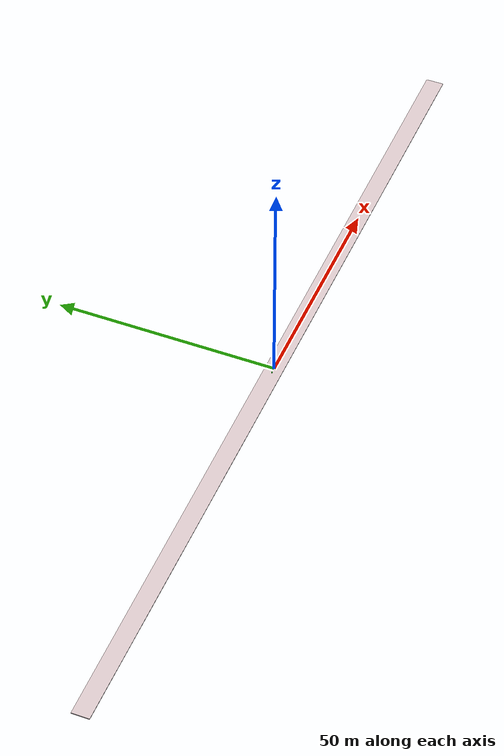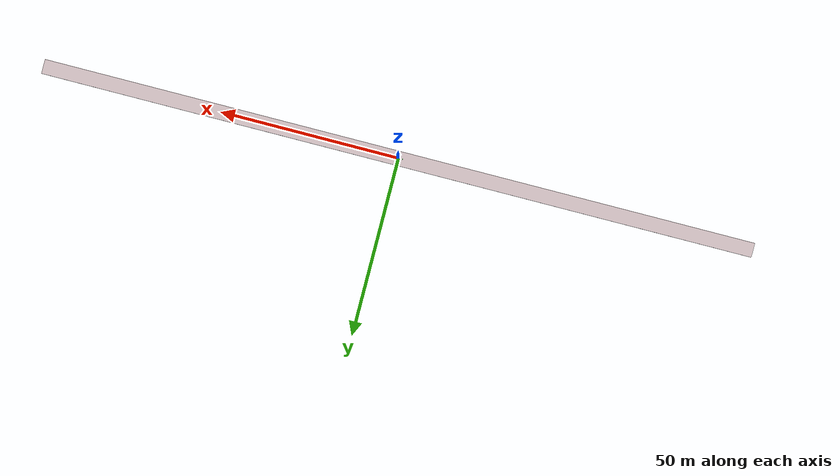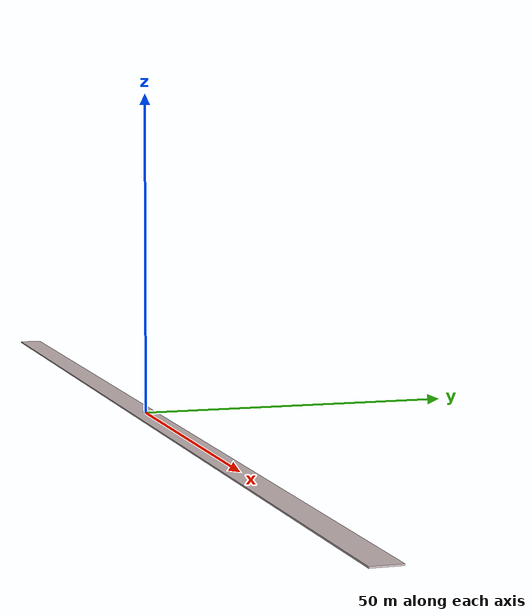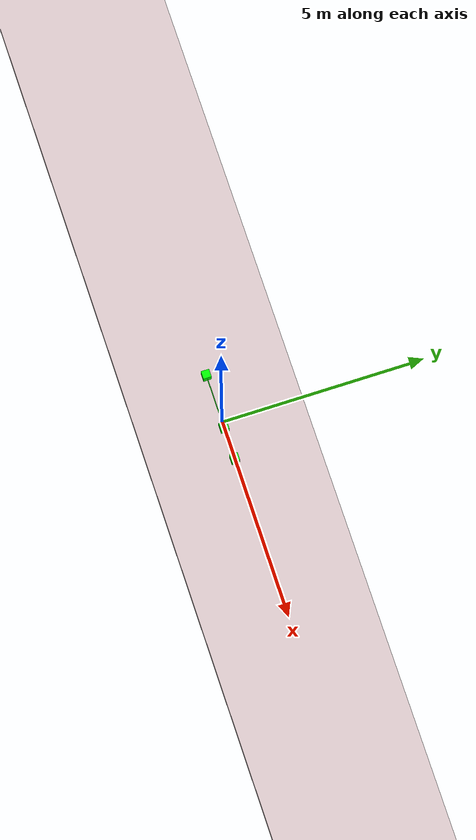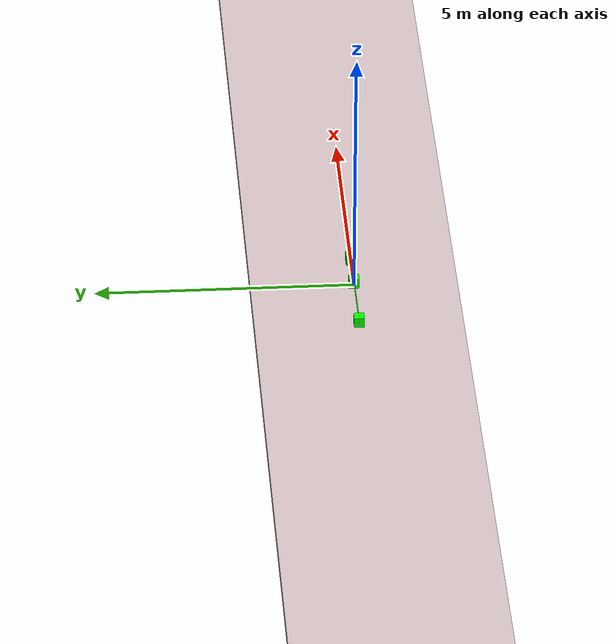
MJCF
<mujoco>
            <compiler angle="radian" autolimits="true" />
            <compiler meshdir="asset" texturedir="asset" assetdir="asset" />
            <option gravity="0 0 -9.81" />
            <default class="main">
            <geom friction="0 0 0" solimp="0.9 1 0.001 0.01 20" solref="0.02 1" condim="1" />
        </default>

        <visual>
            <headlight diffuse="0.7 0.7 0.7" ambient="0.5 0.5 0.5" />
            <global offwidth="1920" offheight="1080" />
        </visual>

        <asset>
            <texture type="skybox" builtin="gradient" rgb1="0 0.5 0.7" rgb2="0 0 0" width="512" height="512" />
            <texture type="2d" name="checks1" builtin="checker" rgb1="1 1 1" rgb2="0 0 0" width="256" height="256" />
            <material name="test_color" texture="checks1" texuniform="true" texrepeat="2 2" />
            <material name="reflectance" reflectance=".4" />
            <texture name="grid" type="2d" builtin="checker" width="512" height="512" rgb1="1.0 0.6235 0.1098" rgb2="1.0 0.749 0.4118" />
            <texture name="white-texture-background" type="2d" file="/home/aryansatpathy/DevStuff/cmu/PHO/sim/geom_sources/fixed_sources/rocket/rocket.white-texture-background.png" content_type="image/png" />
            <material name="pulley" texture="grid" texrepeat="2 2" texuniform="true" />

        </asset>
        <worldbody><body name="springmassplaneentity_0.mass-0" pos="-1.21 0.0 0.0" quat="1.0 0.0 0.0 0.0">
<geom name="springmassplaneentity_0.mass-0.geom" type="box" pos="0 0 0" size="0.1 0.1 0.1" rgba="0 1 0 1" mass="2.24" quat="0 0 0 1" condim="1" contype="1" conaffinity="1" />
<site name="springmassplaneentity_0.mass-0.top-1" pos="0.0 0 0.1" quat="1.0 -0.0 -0.0 -0.0" />
<site name="springmassplaneentity_0.mass-0.sensor" pos="0 0 0" quat="1.0 -0.0 -0.0 -0.0" />
<site name="springmassplaneentity_0.mass-0.center" pos="0 0 0" quat="1.0 -0.0 -0.0 -0.0" />
<site name="springmassplaneentity_0.mass-0.left" pos="-0.1 0 0" quat="1.0 -0.0 -0.0 -0.0" />
<site name="springmassplaneentity_0.mass-0.right" pos="0.1 0 0" quat="1.0 -0.0 -0.0 -0.0" />
<site name="springmassplaneentity_0.mass-0.bottom" pos="0 0 -0.1" quat="1.0 -0.0 -0.0 -0.0" />
<joint name="springmassplaneentity_0.mass-0.joint-x" type="slide" axis="1 0 0" pos="0 0 0" />
<joint name="springmassplaneentity_0.mass-0.joint-z" type="slide" axis="0.0 0 1.0" pos="0 0 0" />
</body>
<body name="springmassplaneentity_0.mass-1" pos="0.14 0.0 0.0" quat="1.0 0.0 0.0 0.0">
<geom name="springmassplaneentity_0.mass-1.geom" type="box" pos="0 0 0" size="0.1 0.1 0.1" rgba="0 1 0 1" mass="2.69" quat="0 0 0 1" condim="1" contype="1" conaffinity="1" />
<site name="springmassplaneentity_0.mass-1.top-1" pos="0.0 0 0.1" quat="1.0 -0.0 -0.0 -0.0" />
<site name="springmassplaneentity_0.mass-1.sensor" pos="0 0 0" quat="1.0 -0.0 -0.0 -0.0" />
<site name="springmassplaneentity_0.mass-1.center" pos="0 0 0" quat="1.0 -0.0 -0.0 -0.0" />
<site name="springmassplaneentity_0.mass-1.left" pos="-0.1 0 0" quat="1.0 -0.0 -0.0 -0.0" />
<site name="springmassplaneentity_0.mass-1.right" pos="0.1 0 0" quat="1.0 -0.0 -0.0 -0.0" />
<site name="springmassplaneentity_0.mass-1.bottom" pos="0 0 -0.1" quat="1.0 -0.0 -0.0 -0.0" />
<joint name="springmassplaneentity_0.mass-1.joint-x" type="slide" axis="1 0 0" pos="0 0 0" />
<joint name="springmassplaneentity_0.mass-1.joint-z" type="slide" axis="0.0 0 1.0" pos="0 0 0" />
</body>
<body name="springmassplaneentity_0.mass-2" pos="0.95 0.0 0.0" quat="1.0 0.0 0.0 0.0">
<geom name="springmassplaneentity_0.mass-2.geom" type="box" pos="0 0 0" size="0.1 0.1 0.1" rgba="0 1 0 1" mass="2.58" quat="0 0 0 1" condim="1" contype="1" conaffinity="1" />
<site name="springmassplaneentity_0.mass-2.top-1" pos="0.0 0 0.1" quat="1.0 -0.0 -0.0 -0.0" />
<site name="springmassplaneentity_0.mass-2.sensor" pos="0 0 0" quat="1.0 -0.0 -0.0 -0.0" />
<site name="springmassplaneentity_0.mass-2.center" pos="0 0 0" quat="1.0 -0.0 -0.0 -0.0" />
<site name="springmassplaneentity_0.mass-2.left" pos="-0.1 0 0" quat="1.0 -0.0 -0.0 -0.0" />
<site name="springmassplaneentity_0.mass-2.right" pos="0.1 0 0" quat="1.0 -0.0 -0.0 -0.0" />
<site name="springmassplaneentity_0.mass-2.bottom" pos="0 0 -0.1" quat="1.0 -0.0 -0.0 -0.0" />
<joint name="springmassplaneentity_0.mass-2.joint-x" type="slide" axis="1 0 0" pos="0 0 0" />
<joint name="springmassplaneentity_0.mass-2.joint-z" type="slide" axis="0.0 0 1.0" pos="0 0 0" />
</body>
<body name="springmassplaneentity_0.plane" pos="0.0 0.0 -0.2" quat="1.0 0.0 0.0 0.0"><geom name="springmassplaneentity_0.plane.geom" type="box" pos="0 0 0" size="100 2 0.1" material="reflectance" rgba="0.82745098 0.75686275 0.76470588 1" mass="1.0" quat="0 0 0 1" condim="1" contype="1" conaffinity="1" />
<site name="springmassplaneentity_0.plane.sensor" pos="0 0 0" quat="1.0 -0.0 -0.0 -0.0" />
<site name="springmassplaneentity_0.plane.left" pos="-100.05 0 0.2" quat="1.0 -0.0 -0.0 -0.0" />
<site name="springmassplaneentity_0.plane.right" pos="100.05 0 0.2" quat="1.0 -0.0 -0.0 -0.0" />
</body>
</worldbody><tendon>
<spatial name="springmassplaneentity_0.spring-0" width="0.01" rgba="0 1 0 1" stiffness="75.47" springlength="1.41" damping="10.37" limited="false" solimplimit="0.99 1 0.001 0.01 20" solreflimit="0.02 1">
<site site="springmassplaneentity_0.mass-0.center" />
<site site="springmassplaneentity_0.mass-1.center" />
</spatial>
</tendon>
<tendon>
<spatial name="springmassplaneentity_0.spring-1" width="0.01" rgba="0 1 0 1" stiffness="185.38" springlength="0.52" damping="10.37" limited="false" solimplimit="0.99 1 0.001 0.01 20" solreflimit="0.02 1">
<site site="springmassplaneentity_0.mass-1.center" />
<site site="springmassplaneentity_0.mass-2.center" />
</spatial>
</tendon>
<tendon>
<spatial name="springmassplaneentity_0.spring-2" width="0.01" rgba="0 1 0 1" stiffness="161.85" springlength="1.88" damping="10.37" limited="false" solimplimit="0.99 1 0.001 0.01 20" solreflimit="0.02 1">
<site site="springmassplaneentity_0.mass-0.center" />
<site site="springmassplaneentity_0.mass-2.center" />
</spatial>
</tendon>

        <sensor>

        </sensor>
        <custom>

        </custom>
        <contact>

        </contact>
        <actuator>

        </actuator>
    </mujoco>
